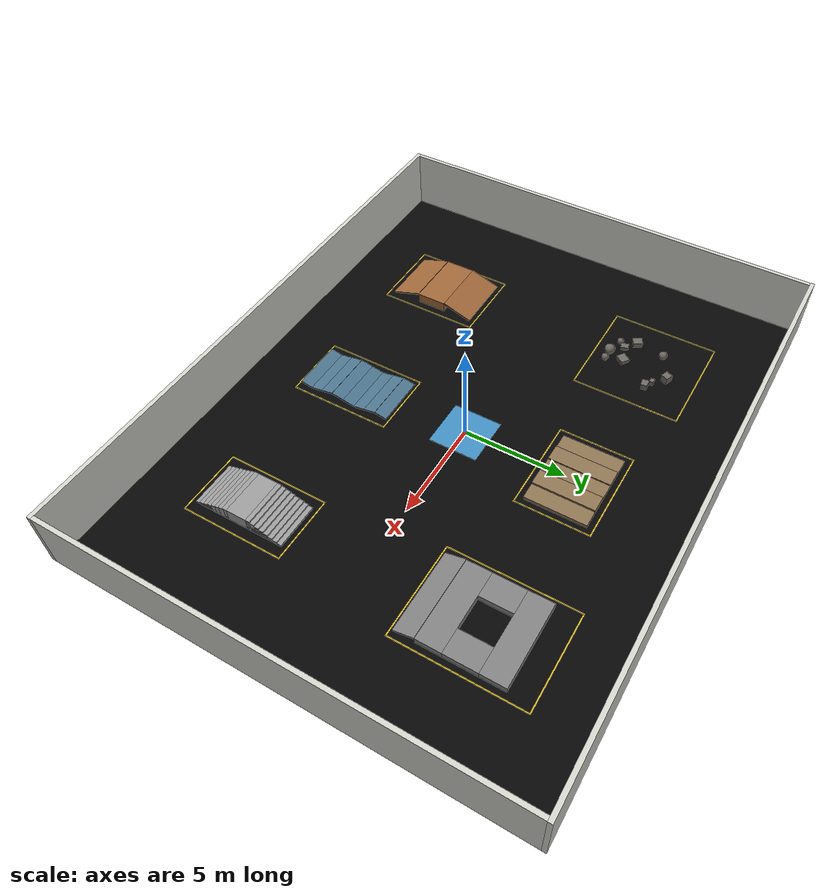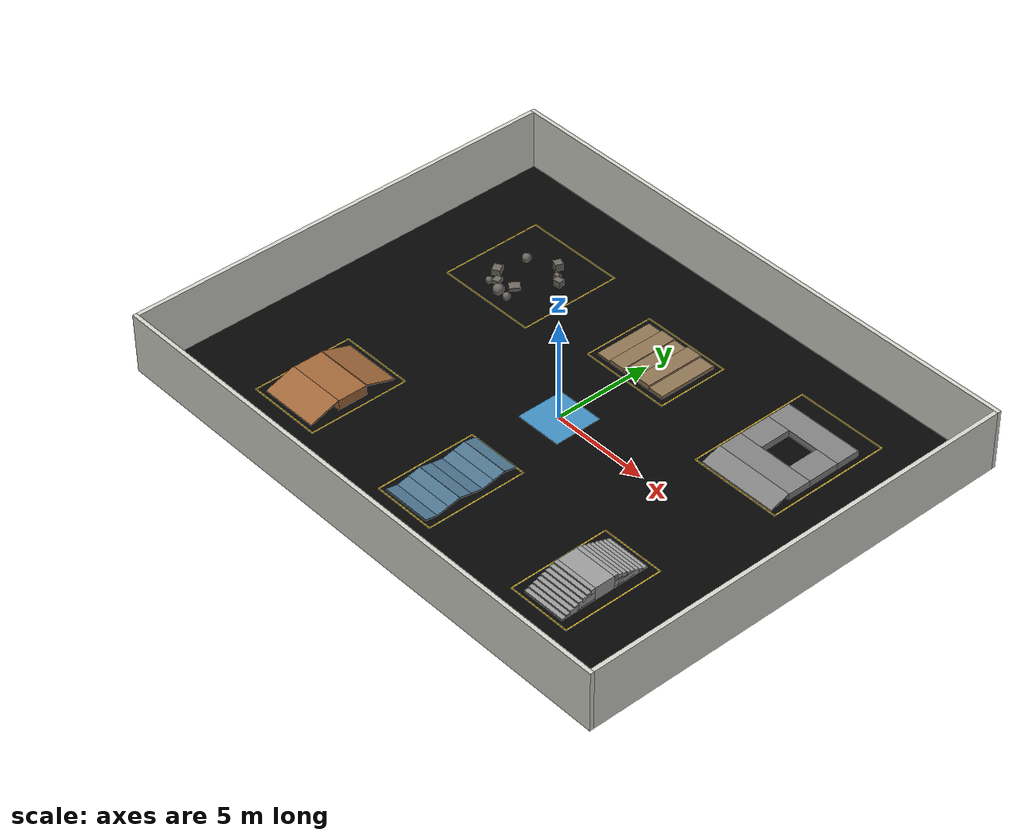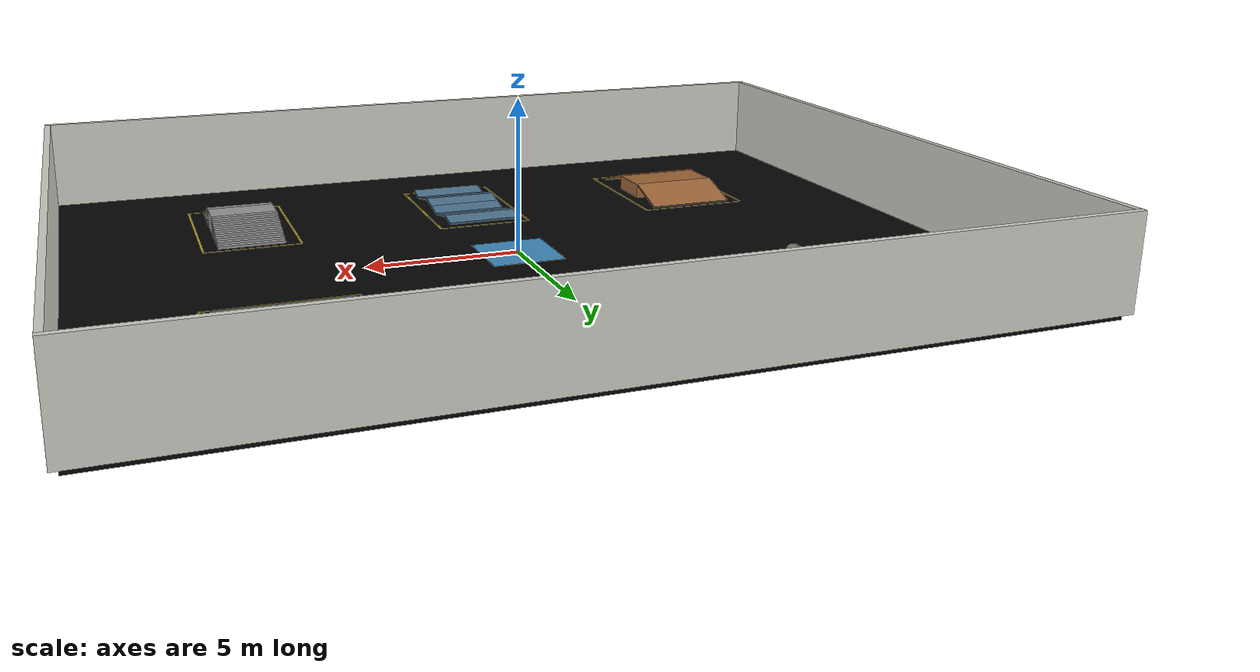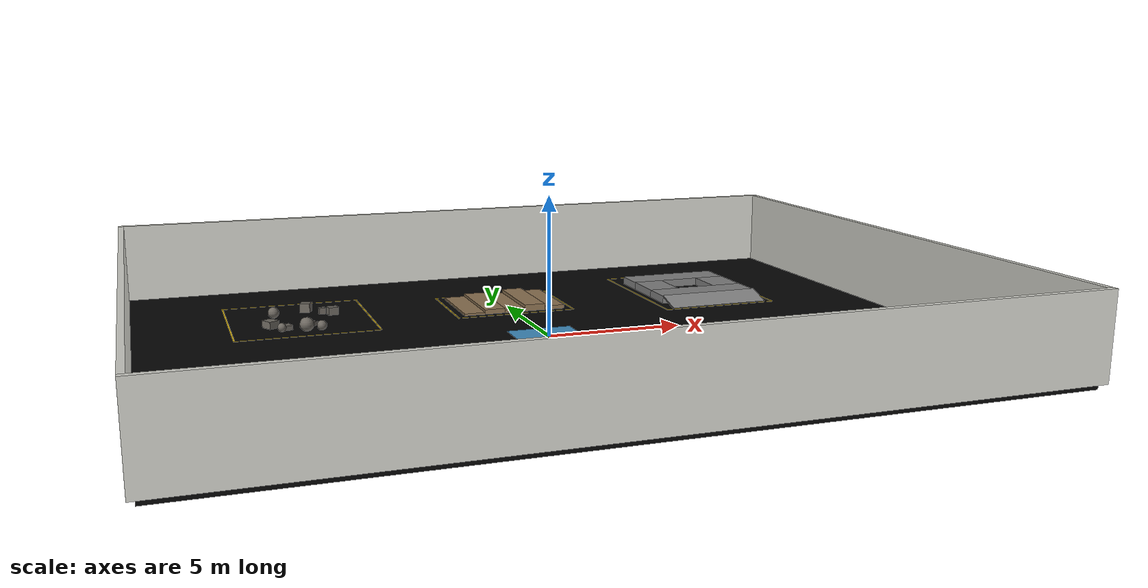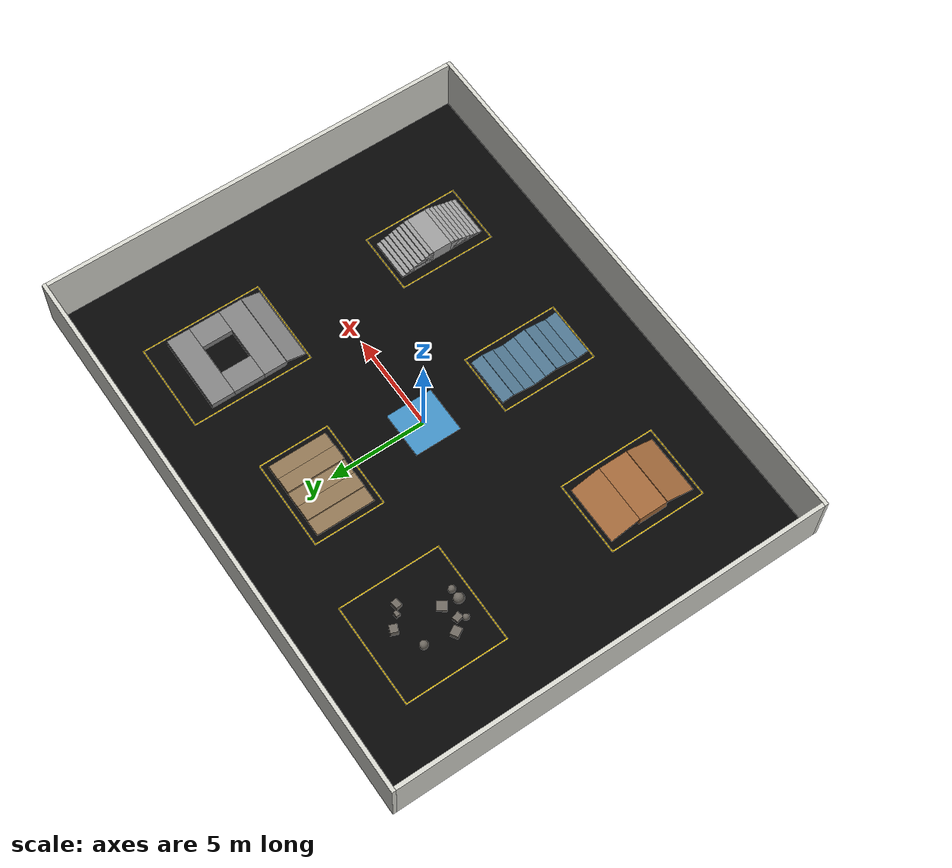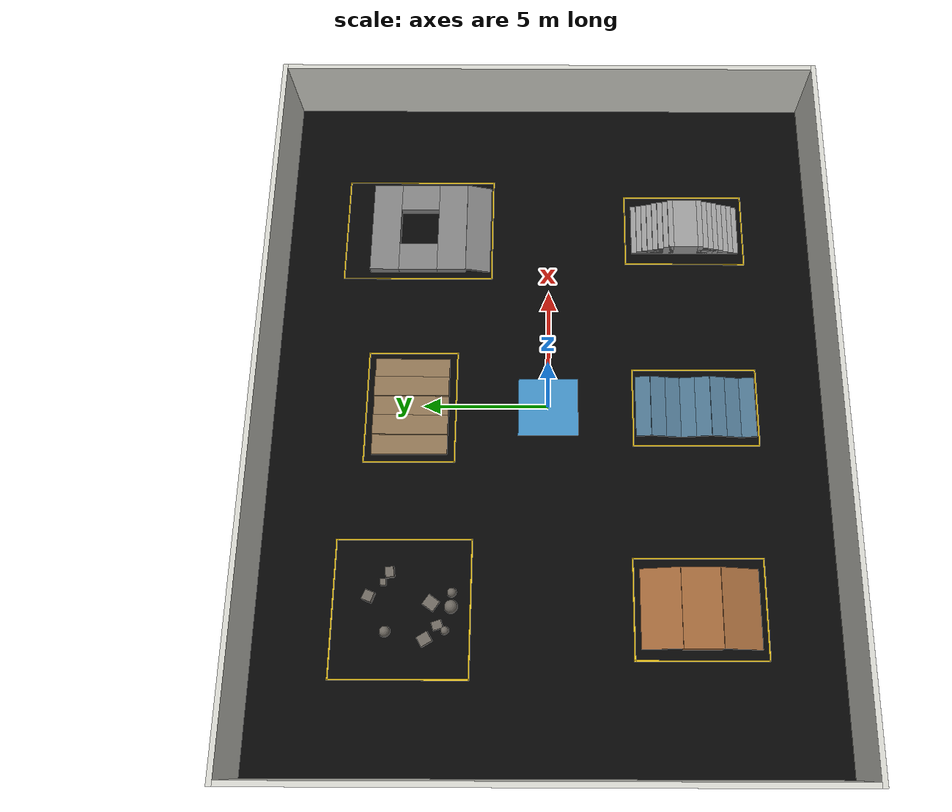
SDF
<?xml version="1.0" ?>
<sdf version="1.6">
  <world name="quadruped_test_lab">
    <physics name="1ms" type="ignored">
      <max_step_size>0.001</max_step_size>
      <real_time_factor>1.0</real_time_factor>
    </physics>
    <plugin filename="gz-sim-physics-system" name="gz::sim::systems::Physics"></plugin>
    <plugin filename="gz-sim-user-commands-system" name="gz::sim::systems::UserCommands"></plugin>
    <plugin filename="gz-sim-scene-broadcaster-system" name="gz::sim::systems::SceneBroadcaster"></plugin>
    <plugin filename="gz-sim-contact-system" name="gz::sim::systems::Contact"></plugin>
    <plugin filename="gz-sim-sensors-system" name="gz::sim::systems::Sensors">
      <render_engine>ogre2</render_engine>
    </plugin>
    <plugin filename="gz-sim-imu-system" name="gz::sim::systems::Imu"></plugin>
    <plugin filename="gz-sim-apply-link-wrench-system" name="gz::sim::systems::ApplyLinkWrench"></plugin>

    <!-- Soft fill light (stands in for skylights) - the point lights below do
         the actual work of lighting an enclosed room. -->
    <light type="directional" name="sun">
      <cast_shadows>false</cast_shadows>
      <pose>0 0 10 0 0 0</pose>
      <diffuse>0.35 0.35 0.35 1</diffuse>
      <specular>0.1 0.1 0.1 1</specular>
      <attenuation>
        <range>1000</range>
        <constant>0.9</constant>
        <linear>0.01</linear>
        <quadratic>0.001</quadratic>
      </attenuation>
      <direction>-0.5 0.1 -0.9</direction>
    </light>

    <light type="point" name="ceiling_light_0">
      <pose>0 0 2.80 0 0 0</pose>
      <diffuse>0.9 0.9 0.85 1</diffuse>
      <specular>0.2 0.2 0.2 1</specular>
      <attenuation>
        <range>18</range>
        <constant>0.4</constant>
        <linear>0.05</linear>
        <quadratic>0.006</quadratic>
      </attenuation>
      <cast_shadows>false</cast_shadows>
    </light>
    <light type="point" name="ceiling_light_1">
      <pose>-8 5.5 2.80 0 0 0</pose>
      <diffuse>0.9 0.9 0.85 1</diffuse>
      <specular>0.2 0.2 0.2 1</specular>
      <attenuation>
        <range>18</range>
        <constant>0.4</constant>
        <linear>0.05</linear>
        <quadratic>0.006</quadratic>
      </attenuation>
      <cast_shadows>false</cast_shadows>
    </light>
    <light type="point" name="ceiling_light_2">
      <pose>0 5.5 2.80 0 0 0</pose>
      <diffuse>0.9 0.9 0.85 1</diffuse>
      <specular>0.2 0.2 0.2 1</specular>
      <attenuation>
        <range>18</range>
        <constant>0.4</constant>
        <linear>0.05</linear>
        <quadratic>0.006</quadratic>
      </attenuation>
      <cast_shadows>false</cast_shadows>
    </light>
    <light type="point" name="ceiling_light_3">
      <pose>8 5.5 2.80 0 0 0</pose>
      <diffuse>0.9 0.9 0.85 1</diffuse>
      <specular>0.2 0.2 0.2 1</specular>
      <attenuation>
        <range>18</range>
        <constant>0.4</constant>
        <linear>0.05</linear>
        <quadratic>0.006</quadratic>
      </attenuation>
      <cast_shadows>false</cast_shadows>
    </light>
    <light type="point" name="ceiling_light_4">
      <pose>-8 -5.5 2.80 0 0 0</pose>
      <diffuse>0.9 0.9 0.85 1</diffuse>
      <specular>0.2 0.2 0.2 1</specular>
      <attenuation>
        <range>18</range>
        <constant>0.4</constant>
        <linear>0.05</linear>
        <quadratic>0.006</quadratic>
      </attenuation>
      <cast_shadows>false</cast_shadows>
    </light>
    <light type="point" name="ceiling_light_5">
      <pose>0 -5.5 2.80 0 0 0</pose>
      <diffuse>0.9 0.9 0.85 1</diffuse>
      <specular>0.2 0.2 0.2 1</specular>
      <attenuation>
        <range>18</range>
        <constant>0.4</constant>
        <linear>0.05</linear>
        <quadratic>0.006</quadratic>
      </attenuation>
      <cast_shadows>false</cast_shadows>
    </light>
    <light type="point" name="ceiling_light_6">
      <pose>8 -5.5 2.80 0 0 0</pose>
      <diffuse>0.9 0.9 0.85 1</diffuse>
      <specular>0.2 0.2 0.2 1</specular>
      <attenuation>
        <range>18</range>
        <constant>0.4</constant>
        <linear>0.05</linear>
        <quadratic>0.006</quadratic>
      </attenuation>
      <cast_shadows>false</cast_shadows>
    </light>

    <model name="rock_sphere_0">
      <static>true</static>
      <pose>-7.442 3.600 0.180 0 0 0</pose>
      <link name="link">
        <collision name="collision">
          <geometry><sphere><radius>0.180</radius></sphere></geometry>
          <surface><friction><ode><mu>0.9</mu><mu2>0.9</mu2></ode></friction></surface>
        </collision>
        <visual name="visual">
          <geometry><sphere><radius>0.180</radius></sphere></geometry>
          <material>
            <ambient>0.42 0.4 0.37 1.0</ambient>
            <diffuse>0.42 0.4 0.37 1.0</diffuse>
          </material>
        </visual>
      </link>
    </model>
    <model name="rock_box_0">
      <static>true</static>
      <pose>-7.054 6.207 0.117 0.0000 0.0000 0.0936</pose>
      <link name="link">
        <collision name="collision">
          <geometry><box><size>0.244 0.203 0.234</size></box></geometry>
          <surface><friction><ode><mu>0.9</mu><mu2>0.9</mu2></ode></friction></surface>
        </collision>
        <visual name="visual">
          <geometry><box><size>0.244 0.203 0.234</size></box></geometry>
          <material>
            <ambient>0.42 0.4 0.37 1.0</ambient>
            <diffuse>0.42 0.4 0.37 1.0</diffuse>
          </material>
        </visual>
      </link>
    </model>
    <model name="rock_sphere_1">
      <static>true</static>
      <pose>-7.979 3.606 0.257 0 0 0</pose>
      <link name="link">
        <collision name="collision">
          <geometry><sphere><radius>0.257</radius></sphere></geometry>
          <surface><friction><ode><mu>0.9</mu><mu2>0.9</mu2></ode></friction></surface>
        </collision>
        <visual name="visual">
          <geometry><sphere><radius>0.257</radius></sphere></geometry>
          <material>
            <ambient>0.42 0.4 0.37 1.0</ambient>
            <diffuse>0.42 0.4 0.37 1.0</diffuse>
          </material>
        </visual>
      </link>
    </model>
    <model name="rock_box_1">
      <static>true</static>
      <pose>-7.820 4.382 0.076 0.0000 0.0000 2.5316</pose>
      <link name="link">
        <collision name="collision">
          <geometry><box><size>0.447 0.500 0.151</size></box></geometry>
          <surface><friction><ode><mu>0.9</mu><mu2>0.9</mu2></ode></friction></surface>
        </collision>
        <visual name="visual">
          <geometry><box><size>0.447 0.500 0.151</size></box></geometry>
          <material>
            <ambient>0.42 0.4 0.37 1.0</ambient>
            <diffuse>0.42 0.4 0.37 1.0</diffuse>
          </material>
        </visual>
      </link>
    </model>
    <model name="rock_box_2">
      <static>true</static>
      <pose>-8.639 4.122 0.084 0.0000 0.0000 0.3038</pose>
      <link name="link">
        <collision name="collision">
          <geometry><box><size>0.314 0.380 0.169</size></box></geometry>
          <surface><friction><ode><mu>0.9</mu><mu2>0.9</mu2></ode></friction></surface>
        </collision>
        <visual name="visual">
          <geometry><box><size>0.314 0.380 0.169</size></box></geometry>
          <material>
            <ambient>0.42 0.4 0.37 1.0</ambient>
            <diffuse>0.42 0.4 0.37 1.0</diffuse>
          </material>
        </visual>
      </link>
    </model>
    <model name="rock_box_3">
      <static>true</static>
      <pose>-7.585 6.729 0.172 0.0000 0.0000 1.1892</pose>
      <link name="link">
        <collision name="collision">
          <geometry><box><size>0.370 0.382 0.345</size></box></geometry>
          <surface><friction><ode><mu>0.9</mu><mu2>0.9</mu2></ode></friction></surface>
        </collision>
        <visual name="visual">
          <geometry><box><size>0.370 0.382 0.345</size></box></geometry>
          <material>
            <ambient>0.42 0.4 0.37 1.0</ambient>
            <diffuse>0.42 0.4 0.37 1.0</diffuse>
          </material>
        </visual>
      </link>
    </model>
    <model name="rock_box_4">
      <static>true</static>
      <pose>-6.682 5.974 0.145 0.0000 0.0000 0.1440</pose>
      <link name="link">
        <collision name="collision">
          <geometry><box><size>0.382 0.319 0.291</size></box></geometry>
          <surface><friction><ode><mu>0.9</mu><mu2>0.9</mu2></ode></friction></surface>
        </collision>
        <visual name="visual">
          <geometry><box><size>0.382 0.319 0.291</size></box></geometry>
          <material>
            <ambient>0.42 0.4 0.37 1.0</ambient>
            <diffuse>0.42 0.4 0.37 1.0</diffuse>
          </material>
        </visual>
      </link>
    </model>
    <model name="rock_sphere_2">
      <static>true</static>
      <pose>-8.842 3.819 0.158 0 0 0</pose>
      <link name="link">
        <collision name="collision">
          <geometry><sphere><radius>0.158</radius></sphere></geometry>
          <surface><friction><ode><mu>0.9</mu><mu2>0.9</mu2></ode></friction></surface>
        </collision>
        <visual name="visual">
          <geometry><sphere><radius>0.158</radius></sphere></geometry>
          <material>
            <ambient>0.42 0.4 0.37 1.0</ambient>
            <diffuse>0.42 0.4 0.37 1.0</diffuse>
          </material>
        </visual>
      </link>
    </model>
    <model name="rock_sphere_3">
      <static>true</static>
      <pose>-8.888 6.043 0.207 0 0 0</pose>
      <link name="link">
        <collision name="collision">
          <geometry><sphere><radius>0.207</radius></sphere></geometry>
          <surface><friction><ode><mu>0.9</mu><mu2>0.9</mu2></ode></friction></surface>
        </collision>
        <visual name="visual">
          <geometry><sphere><radius>0.207</radius></sphere></geometry>
          <material>
            <ambient>0.42 0.4 0.37 1.0</ambient>
            <diffuse>0.42 0.4 0.37 1.0</diffuse>
          </material>
        </visual>
      </link>
    </model>
    <model name="rock_box_5">
      <static>true</static>
      <pose>-9.162 4.568 0.136 0.0000 0.0000 0.5376</pose>
      <link name="link">
        <collision name="collision">
          <geometry><box><size>0.401 0.457 0.272</size></box></geometry>
          <surface><friction><ode><mu>0.9</mu><mu2>0.9</mu2></ode></friction></surface>
        </collision>
        <visual name="visual">
          <geometry><box><size>0.401 0.457 0.272</size></box></geometry>
          <material>
            <ambient>0.42 0.4 0.37 1.0</ambient>
            <diffuse>0.42 0.4 0.37 1.0</diffuse>
          </material>
        </visual>
      </link>
    </model>
    <model name="step_field_0">
      <static>true</static>
      <pose>-1.600 5.500 0.040 0.0000 0.0000 0.0000</pose>
      <link name="link">
        <collision name="collision">
          <geometry><box><size>0.800 3.000 0.080</size></box></geometry>
          <surface><friction><ode><mu>0.9</mu><mu2>0.9</mu2></ode></friction></surface>
        </collision>
        <visual name="visual">
          <geometry><box><size>0.800 3.000 0.080</size></box></geometry>
          <material>
            <ambient>0.55 0.45 0.32 1.0</ambient>
            <diffuse>0.55 0.45 0.32 1.0</diffuse>
          </material>
        </visual>
      </link>
    </model>
    <model name="step_field_1">
      <static>true</static>
      <pose>-0.800 5.500 0.090 0.0000 0.0000 0.0000</pose>
      <link name="link">
        <collision name="collision">
          <geometry><box><size>0.800 3.000 0.180</size></box></geometry>
          <surface><friction><ode><mu>0.9</mu><mu2>0.9</mu2></ode></friction></surface>
        </collision>
        <visual name="visual">
          <geometry><box><size>0.800 3.000 0.180</size></box></geometry>
          <material>
            <ambient>0.55 0.45 0.32 1.0</ambient>
            <diffuse>0.55 0.45 0.32 1.0</diffuse>
          </material>
        </visual>
      </link>
    </model>
    <model name="step_field_2">
      <static>true</static>
      <pose>0.000 5.500 0.060 0.0000 0.0000 0.0000</pose>
      <link name="link">
        <collision name="collision">
          <geometry><box><size>0.800 3.000 0.120</size></box></geometry>
          <surface><friction><ode><mu>0.9</mu><mu2>0.9</mu2></ode></friction></surface>
        </collision>
        <visual name="visual">
          <geometry><box><size>0.800 3.000 0.120</size></box></geometry>
          <material>
            <ambient>0.55 0.45 0.32 1.0</ambient>
            <diffuse>0.55 0.45 0.32 1.0</diffuse>
          </material>
        </visual>
      </link>
    </model>
    <model name="step_field_3">
      <static>true</static>
      <pose>0.800 5.500 0.125 0.0000 0.0000 0.0000</pose>
      <link name="link">
        <collision name="collision">
          <geometry><box><size>0.800 3.000 0.250</size></box></geometry>
          <surface><friction><ode><mu>0.9</mu><mu2>0.9</mu2></ode></friction></surface>
        </collision>
        <visual name="visual">
          <geometry><box><size>0.800 3.000 0.250</size></box></geometry>
          <material>
            <ambient>0.55 0.45 0.32 1.0</ambient>
            <diffuse>0.55 0.45 0.32 1.0</diffuse>
          </material>
        </visual>
      </link>
    </model>
    <model name="step_field_4">
      <static>true</static>
      <pose>1.600 5.500 0.075 0.0000 0.0000 0.0000</pose>
      <link name="link">
        <collision name="collision">
          <geometry><box><size>0.800 3.000 0.150</size></box></geometry>
          <surface><friction><ode><mu>0.9</mu><mu2>0.9</mu2></ode></friction></surface>
        </collision>
        <visual name="visual">
          <geometry><box><size>0.800 3.000 0.150</size></box></geometry>
          <material>
            <ambient>0.55 0.45 0.32 1.0</ambient>
            <diffuse>0.55 0.45 0.32 1.0</diffuse>
          </material>
        </visual>
      </link>
    </model>
    <model name="pit_frame_north_0">
      <static>true</static>
      <pose>8.000 6.900 0.150 0.0000 0.0000 0.0000</pose>
      <link name="link">
        <collision name="collision">
          <geometry><box><size>4.000 1.200 0.300</size></box></geometry>
          <surface><friction><ode><mu>0.9</mu><mu2>0.9</mu2></ode></friction></surface>
        </collision>
        <visual name="visual">
          <geometry><box><size>4.000 1.200 0.300</size></box></geometry>
          <material>
            <ambient>0.5 0.5 0.5 1.0</ambient>
            <diffuse>0.5 0.5 0.5 1.0</diffuse>
          </material>
        </visual>
      </link>
    </model>
    <model name="pit_frame_south_0">
      <static>true</static>
      <pose>8.000 4.100 0.150 0.0000 0.0000 0.0000</pose>
      <link name="link">
        <collision name="collision">
          <geometry><box><size>4.000 1.200 0.300</size></box></geometry>
          <surface><friction><ode><mu>0.9</mu><mu2>0.9</mu2></ode></friction></surface>
        </collision>
        <visual name="visual">
          <geometry><box><size>4.000 1.200 0.300</size></box></geometry>
          <material>
            <ambient>0.5 0.5 0.5 1.0</ambient>
            <diffuse>0.5 0.5 0.5 1.0</diffuse>
          </material>
        </visual>
      </link>
    </model>
    <model name="pit_frame_east_0">
      <static>true</static>
      <pose>9.400 5.500 0.150 0.0000 0.0000 0.0000</pose>
      <link name="link">
        <collision name="collision">
          <geometry><box><size>1.200 1.600 0.300</size></box></geometry>
          <surface><friction><ode><mu>0.9</mu><mu2>0.9</mu2></ode></friction></surface>
        </collision>
        <visual name="visual">
          <geometry><box><size>1.200 1.600 0.300</size></box></geometry>
          <material>
            <ambient>0.5 0.5 0.5 1.0</ambient>
            <diffuse>0.5 0.5 0.5 1.0</diffuse>
          </material>
        </visual>
      </link>
    </model>
    <model name="pit_frame_west_0">
      <static>true</static>
      <pose>6.600 5.500 0.150 0.0000 0.0000 0.0000</pose>
      <link name="link">
        <collision name="collision">
          <geometry><box><size>1.200 1.600 0.300</size></box></geometry>
          <surface><friction><ode><mu>0.9</mu><mu2>0.9</mu2></ode></friction></surface>
        </collision>
        <visual name="visual">
          <geometry><box><size>1.200 1.600 0.300</size></box></geometry>
          <material>
            <ambient>0.5 0.5 0.5 1.0</ambient>
            <diffuse>0.5 0.5 0.5 1.0</diffuse>
          </material>
        </visual>
      </link>
    </model>
    <model name="pit_ramp">
      <static>true</static>
      <pose>8.000 3.000 0.150 0.2915 0.0000 0.0000</pose>
      <link name="link">
        <collision name="collision">
          <geometry><box><size>4.000 1.044 0.060</size></box></geometry>
          <surface><friction><ode><mu>0.9</mu><mu2>0.9</mu2></ode></friction></surface>
        </collision>
        <visual name="visual">
          <geometry><box><size>4.000 1.044 0.060</size></box></geometry>
          <material>
            <ambient>0.5 0.5 0.5 1.0</ambient>
            <diffuse>0.5 0.5 0.5 1.0</diffuse>
          </material>
        </visual>
      </link>
    </model>
    <model name="slope_up_ramp">
      <static>true</static>
      <pose>-8.000 -4.250 0.250 -0.3218 0.0000 0.0000</pose>
      <link name="link">
        <collision name="collision">
          <geometry><box><size>3.000 1.581 0.060</size></box></geometry>
          <surface><friction><ode><mu>0.9</mu><mu2>0.9</mu2></ode></friction></surface>
        </collision>
        <visual name="visual">
          <geometry><box><size>3.000 1.581 0.060</size></box></geometry>
          <material>
            <ambient>0.62 0.4 0.22 1.0</ambient>
            <diffuse>0.62 0.4 0.22 1.0</diffuse>
          </material>
        </visual>
      </link>
    </model>
    <model name="slope_plateau">
      <static>true</static>
      <pose>-8.000 -5.750 0.250 0.0000 0.0000 0.0000</pose>
      <link name="link">
        <collision name="collision">
          <geometry><box><size>3.000 1.500 0.500</size></box></geometry>
          <surface><friction><ode><mu>0.9</mu><mu2>0.9</mu2></ode></friction></surface>
        </collision>
        <visual name="visual">
          <geometry><box><size>3.000 1.500 0.500</size></box></geometry>
          <material>
            <ambient>0.62 0.4 0.22 1.0</ambient>
            <diffuse>0.62 0.4 0.22 1.0</diffuse>
          </material>
        </visual>
      </link>
    </model>
    <model name="slope_down_ramp">
      <static>true</static>
      <pose>-8.000 -7.250 0.250 0.3218 0.0000 0.0000</pose>
      <link name="link">
        <collision name="collision">
          <geometry><box><size>3.000 1.581 0.060</size></box></geometry>
          <surface><friction><ode><mu>0.9</mu><mu2>0.9</mu2></ode></friction></surface>
        </collision>
        <visual name="visual">
          <geometry><box><size>3.000 1.581 0.060</size></box></geometry>
          <material>
            <ambient>0.62 0.4 0.22 1.0</ambient>
            <diffuse>0.62 0.4 0.22 1.0</diffuse>
          </material>
        </visual>
      </link>
    </model>
    <model name="wave_seg_0">
      <static>true</static>
      <pose>0.000 -3.800 0.180 -0.1974 0.0000 0.0000</pose>
      <link name="link">
        <collision name="collision">
          <geometry><box><size>2.500 0.612 0.060</size></box></geometry>
          <surface><friction><ode><mu>0.9</mu><mu2>0.9</mu2></ode></friction></surface>
        </collision>
        <visual name="visual">
          <geometry><box><size>2.500 0.612 0.060</size></box></geometry>
          <material>
            <ambient>0.3 0.45 0.55 1.0</ambient>
            <diffuse>0.3 0.45 0.55 1.0</diffuse>
          </material>
        </visual>
      </link>
    </model>
    <model name="wave_seg_1">
      <static>true</static>
      <pose>0.000 -4.400 0.180 0.1974 0.0000 0.0000</pose>
      <link name="link">
        <collision name="collision">
          <geometry><box><size>2.500 0.612 0.060</size></box></geometry>
          <surface><friction><ode><mu>0.9</mu><mu2>0.9</mu2></ode></friction></surface>
        </collision>
        <visual name="visual">
          <geometry><box><size>2.500 0.612 0.060</size></box></geometry>
          <material>
            <ambient>0.3 0.45 0.55 1.0</ambient>
            <diffuse>0.3 0.45 0.55 1.0</diffuse>
          </material>
        </visual>
      </link>
    </model>
    <model name="wave_seg_2">
      <static>true</static>
      <pose>0.000 -5.000 0.060 0.1974 0.0000 0.0000</pose>
      <link name="link">
        <collision name="collision">
          <geometry><box><size>2.500 0.612 0.060</size></box></geometry>
          <surface><friction><ode><mu>0.9</mu><mu2>0.9</mu2></ode></friction></surface>
        </collision>
        <visual name="visual">
          <geometry><box><size>2.500 0.612 0.060</size></box></geometry>
          <material>
            <ambient>0.3 0.45 0.55 1.0</ambient>
            <diffuse>0.3 0.45 0.55 1.0</diffuse>
          </material>
        </visual>
      </link>
    </model>
    <model name="wave_seg_3">
      <static>true</static>
      <pose>0.000 -5.600 0.060 -0.1974 0.0000 0.0000</pose>
      <link name="link">
        <collision name="collision">
          <geometry><box><size>2.500 0.612 0.060</size></box></geometry>
          <surface><friction><ode><mu>0.9</mu><mu2>0.9</mu2></ode></friction></surface>
        </collision>
        <visual name="visual">
          <geometry><box><size>2.500 0.612 0.060</size></box></geometry>
          <material>
            <ambient>0.3 0.45 0.55 1.0</ambient>
            <diffuse>0.3 0.45 0.55 1.0</diffuse>
          </material>
        </visual>
      </link>
    </model>
    <model name="wave_seg_4">
      <static>true</static>
      <pose>0.000 -6.200 0.180 -0.1974 0.0000 0.0000</pose>
      <link name="link">
        <collision name="collision">
          <geometry><box><size>2.500 0.612 0.060</size></box></geometry>
          <surface><friction><ode><mu>0.9</mu><mu2>0.9</mu2></ode></friction></surface>
        </collision>
        <visual name="visual">
          <geometry><box><size>2.500 0.612 0.060</size></box></geometry>
          <material>
            <ambient>0.3 0.45 0.55 1.0</ambient>
            <diffuse>0.3 0.45 0.55 1.0</diffuse>
          </material>
        </visual>
      </link>
    </model>
    <model name="wave_seg_5">
      <static>true</static>
      <pose>0.000 -6.800 0.180 0.1974 0.0000 0.0000</pose>
      <link name="link">
        <collision name="collision">
          <geometry><box><size>2.500 0.612 0.060</size></box></geometry>
          <surface><friction><ode><mu>0.9</mu><mu2>0.9</mu2></ode></friction></surface>
        </collision>
        <visual name="visual">
          <geometry><box><size>2.500 0.612 0.060</size></box></geometry>
          <material>
            <ambient>0.3 0.45 0.55 1.0</ambient>
            <diffuse>0.3 0.45 0.55 1.0</diffuse>
          </material>
        </visual>
      </link>
    </model>
    <model name="wave_seg_6">
      <static>true</static>
      <pose>0.000 -7.400 0.060 0.1974 0.0000 0.0000</pose>
      <link name="link">
        <collision name="collision">
          <geometry><box><size>2.500 0.612 0.060</size></box></geometry>
          <surface><friction><ode><mu>0.9</mu><mu2>0.9</mu2></ode></friction></surface>
        </collision>
        <visual name="visual">
          <geometry><box><size>2.500 0.612 0.060</size></box></geometry>
          <material>
            <ambient>0.3 0.45 0.55 1.0</ambient>
            <diffuse>0.3 0.45 0.55 1.0</diffuse>
          </material>
        </visual>
      </link>
    </model>
    <model name="wave_seg_7">
      <static>true</static>
      <pose>0.000 -8.000 0.060 -0.1974 0.0000 0.0000</pose>
      <link name="link">
        <collision name="collision">
          <geometry><box><size>2.500 0.612 0.060</size></box></geometry>
          <surface><friction><ode><mu>0.9</mu><mu2>0.9</mu2></ode></friction></surface>
        </collision>
        <visual name="visual">
          <geometry><box><size>2.500 0.612 0.060</size></box></geometry>
          <material>
            <ambient>0.3 0.45 0.55 1.0</ambient>
            <diffuse>0.3 0.45 0.55 1.0</diffuse>
          </material>
        </visual>
      </link>
    </model>
    <model name="stair_up_step1_0">
      <static>true</static>
      <pose>8.000 -4.380 0.040 0.0000 0.0000 0.0000</pose>
      <link name="link">
        <collision name="collision">
          <geometry><box><size>2.200 1.760 0.080</size></box></geometry>
          <surface><friction><ode><mu>0.9</mu><mu2>0.9</mu2></ode></friction></surface>
        </collision>
        <visual name="visual">
          <geometry><box><size>2.200 1.760 0.080</size></box></geometry>
          <material>
            <ambient>0.6 0.6 0.6 1.0</ambient>
            <diffuse>0.6 0.6 0.6 1.0</diffuse>
          </material>
        </visual>
      </link>
    </model>
    <model name="stair_up_step2_0">
      <static>true</static>
      <pose>8.000 -4.490 0.080 0.0000 0.0000 0.0000</pose>
      <link name="link">
        <collision name="collision">
          <geometry><box><size>2.200 1.540 0.160</size></box></geometry>
          <surface><friction><ode><mu>0.9</mu><mu2>0.9</mu2></ode></friction></surface>
        </collision>
        <visual name="visual">
          <geometry><box><size>2.200 1.540 0.160</size></box></geometry>
          <material>
            <ambient>0.6 0.6 0.6 1.0</ambient>
            <diffuse>0.6 0.6 0.6 1.0</diffuse>
          </material>
        </visual>
      </link>
    </model>
    <model name="stair_up_step3_0">
      <static>true</static>
      <pose>8.000 -4.600 0.120 0.0000 0.0000 0.0000</pose>
      <link name="link">
        <collision name="collision">
          <geometry><box><size>2.200 1.320 0.240</size></box></geometry>
          <surface><friction><ode><mu>0.9</mu><mu2>0.9</mu2></ode></friction></surface>
        </collision>
        <visual name="visual">
          <geometry><box><size>2.200 1.320 0.240</size></box></geometry>
          <material>
            <ambient>0.6 0.6 0.6 1.0</ambient>
            <diffuse>0.6 0.6 0.6 1.0</diffuse>
          </material>
        </visual>
      </link>
    </model>
    <model name="stair_up_step4_0">
      <static>true</static>
      <pose>8.000 -4.710 0.160 0.0000 0.0000 0.0000</pose>
      <link name="link">
        <collision name="collision">
          <geometry><box><size>2.200 1.100 0.320</size></box></geometry>
          <surface><friction><ode><mu>0.9</mu><mu2>0.9</mu2></ode></friction></surface>
        </collision>
        <visual name="visual">
          <geometry><box><size>2.200 1.100 0.320</size></box></geometry>
          <material>
            <ambient>0.6 0.6 0.6 1.0</ambient>
            <diffuse>0.6 0.6 0.6 1.0</diffuse>
          </material>
        </visual>
      </link>
    </model>
    <model name="stair_up_step5_0">
      <static>true</static>
      <pose>8.000 -4.820 0.200 0.0000 0.0000 0.0000</pose>
      <link name="link">
        <collision name="collision">
          <geometry><box><size>2.200 0.880 0.400</size></box></geometry>
          <surface><friction><ode><mu>0.9</mu><mu2>0.9</mu2></ode></friction></surface>
        </collision>
        <visual name="visual">
          <geometry><box><size>2.200 0.880 0.400</size></box></geometry>
          <material>
            <ambient>0.6 0.6 0.6 1.0</ambient>
            <diffuse>0.6 0.6 0.6 1.0</diffuse>
          </material>
        </visual>
      </link>
    </model>
    <model name="stair_up_step6_0">
      <static>true</static>
      <pose>8.000 -4.930 0.240 0.0000 0.0000 0.0000</pose>
      <link name="link">
        <collision name="collision">
          <geometry><box><size>2.200 0.660 0.480</size></box></geometry>
          <surface><friction><ode><mu>0.9</mu><mu2>0.9</mu2></ode></friction></surface>
        </collision>
        <visual name="visual">
          <geometry><box><size>2.200 0.660 0.480</size></box></geometry>
          <material>
            <ambient>0.6 0.6 0.6 1.0</ambient>
            <diffuse>0.6 0.6 0.6 1.0</diffuse>
          </material>
        </visual>
      </link>
    </model>
    <model name="stair_up_step7_0">
      <static>true</static>
      <pose>8.000 -5.040 0.280 0.0000 0.0000 0.0000</pose>
      <link name="link">
        <collision name="collision">
          <geometry><box><size>2.200 0.440 0.560</size></box></geometry>
          <surface><friction><ode><mu>0.9</mu><mu2>0.9</mu2></ode></friction></surface>
        </collision>
        <visual name="visual">
          <geometry><box><size>2.200 0.440 0.560</size></box></geometry>
          <material>
            <ambient>0.6 0.6 0.6 1.0</ambient>
            <diffuse>0.6 0.6 0.6 1.0</diffuse>
          </material>
        </visual>
      </link>
    </model>
    <model name="stair_up_step8_0">
      <static>true</static>
      <pose>8.000 -5.150 0.320 0.0000 0.0000 0.0000</pose>
      <link name="link">
        <collision name="collision">
          <geometry><box><size>2.200 0.220 0.640</size></box></geometry>
          <surface><friction><ode><mu>0.9</mu><mu2>0.9</mu2></ode></friction></surface>
        </collision>
        <visual name="visual">
          <geometry><box><size>2.200 0.220 0.640</size></box></geometry>
          <material>
            <ambient>0.6 0.6 0.6 1.0</ambient>
            <diffuse>0.6 0.6 0.6 1.0</diffuse>
          </material>
        </visual>
      </link>
    </model>
    <model name="stair_landing">
      <static>true</static>
      <pose>8.000 -5.760 0.320 0.0000 0.0000 0.0000</pose>
      <link name="link">
        <collision name="collision">
          <geometry><box><size>2.200 1.000 0.640</size></box></geometry>
          <surface><friction><ode><mu>0.9</mu><mu2>0.9</mu2></ode></friction></surface>
        </collision>
        <visual name="visual">
          <geometry><box><size>2.200 1.000 0.640</size></box></geometry>
          <material>
            <ambient>0.6 0.6 0.6 1.0</ambient>
            <diffuse>0.6 0.6 0.6 1.0</diffuse>
          </material>
        </visual>
      </link>
    </model>
    <model name="stair_down_step1_0">
      <static>true</static>
      <pose>8.000 -7.140 0.040 0.0000 0.0000 0.0000</pose>
      <link name="link">
        <collision name="collision">
          <geometry><box><size>2.200 1.760 0.080</size></box></geometry>
          <surface><friction><ode><mu>0.9</mu><mu2>0.9</mu2></ode></friction></surface>
        </collision>
        <visual name="visual">
          <geometry><box><size>2.200 1.760 0.080</size></box></geometry>
          <material>
            <ambient>0.6 0.6 0.6 1.0</ambient>
            <diffuse>0.6 0.6 0.6 1.0</diffuse>
          </material>
        </visual>
      </link>
    </model>
    <model name="stair_down_step2_0">
      <static>true</static>
      <pose>8.000 -7.030 0.080 0.0000 0.0000 0.0000</pose>
      <link name="link">
        <collision name="collision">
          <geometry><box><size>2.200 1.540 0.160</size></box></geometry>
          <surface><friction><ode><mu>0.9</mu><mu2>0.9</mu2></ode></friction></surface>
        </collision>
        <visual name="visual">
          <geometry><box><size>2.200 1.540 0.160</size></box></geometry>
          <material>
            <ambient>0.6 0.6 0.6 1.0</ambient>
            <diffuse>0.6 0.6 0.6 1.0</diffuse>
          </material>
        </visual>
      </link>
    </model>
    <model name="stair_down_step3_0">
      <static>true</static>
      <pose>8.000 -6.920 0.120 0.0000 0.0000 0.0000</pose>
      <link name="link">
        <collision name="collision">
          <geometry><box><size>2.200 1.320 0.240</size></box></geometry>
          <surface><friction><ode><mu>0.9</mu><mu2>0.9</mu2></ode></friction></surface>
        </collision>
        <visual name="visual">
          <geometry><box><size>2.200 1.320 0.240</size></box></geometry>
          <material>
            <ambient>0.6 0.6 0.6 1.0</ambient>
            <diffuse>0.6 0.6 0.6 1.0</diffuse>
          </material>
        </visual>
      </link>
    </model>
    <model name="stair_down_step4_0">
      <static>true</static>
      <pose>8.000 -6.810 0.160 0.0000 0.0000 0.0000</pose>
      <link name="link">
        <collision name="collision">
          <geometry><box><size>2.200 1.100 0.320</size></box></geometry>
          <surface><friction><ode><mu>0.9</mu><mu2>0.9</mu2></ode></friction></surface>
        </collision>
        <visual name="visual">
          <geometry><box><size>2.200 1.100 0.320</size></box></geometry>
          <material>
            <ambient>0.6 0.6 0.6 1.0</ambient>
            <diffuse>0.6 0.6 0.6 1.0</diffuse>
          </material>
        </visual>
      </link>
    </model>
    <model name="stair_down_step5_0">
      <static>true</static>
      <pose>8.000 -6.700 0.200 0.0000 0.0000 0.0000</pose>
      <link name="link">
        <collision name="collision">
          <geometry><box><size>2.200 0.880 0.400</size></box></geometry>
          <surface><friction><ode><mu>0.9</mu><mu2>0.9</mu2></ode></friction></surface>
        </collision>
        <visual name="visual">
          <geometry><box><size>2.200 0.880 0.400</size></box></geometry>
          <material>
            <ambient>0.6 0.6 0.6 1.0</ambient>
            <diffuse>0.6 0.6 0.6 1.0</diffuse>
          </material>
        </visual>
      </link>
    </model>
    <model name="stair_down_step6_0">
      <static>true</static>
      <pose>8.000 -6.590 0.240 0.0000 0.0000 0.0000</pose>
      <link name="link">
        <collision name="collision">
          <geometry><box><size>2.200 0.660 0.480</size></box></geometry>
          <surface><friction><ode><mu>0.9</mu><mu2>0.9</mu2></ode></friction></surface>
        </collision>
        <visual name="visual">
          <geometry><box><size>2.200 0.660 0.480</size></box></geometry>
          <material>
            <ambient>0.6 0.6 0.6 1.0</ambient>
            <diffuse>0.6 0.6 0.6 1.0</diffuse>
          </material>
        </visual>
      </link>
    </model>
    <model name="stair_down_step7_0">
      <static>true</static>
      <pose>8.000 -6.480 0.280 0.0000 0.0000 0.0000</pose>
      <link name="link">
        <collision name="collision">
          <geometry><box><size>2.200 0.440 0.560</size></box></geometry>
          <surface><friction><ode><mu>0.9</mu><mu2>0.9</mu2></ode></friction></surface>
        </collision>
        <visual name="visual">
          <geometry><box><size>2.200 0.440 0.560</size></box></geometry>
          <material>
            <ambient>0.6 0.6 0.6 1.0</ambient>
            <diffuse>0.6 0.6 0.6 1.0</diffuse>
          </material>
        </visual>
      </link>
    </model>
    <model name="stair_down_step8_0">
      <static>true</static>
      <pose>8.000 -6.370 0.320 0.0000 0.0000 0.0000</pose>
      <link name="link">
        <collision name="collision">
          <geometry><box><size>2.200 0.220 0.640</size></box></geometry>
          <surface><friction><ode><mu>0.9</mu><mu2>0.9</mu2></ode></friction></surface>
        </collision>
        <visual name="visual">
          <geometry><box><size>2.200 0.220 0.640</size></box></geometry>
          <material>
            <ambient>0.6 0.6 0.6 1.0</ambient>
            <diffuse>0.6 0.6 0.6 1.0</diffuse>
          </material>
        </visual>
      </link>
    </model>
    <model name="floor">
      <static>true</static>
      <pose>0.000 0.000 -0.100 0.0000 0.0000 0.0000</pose>
      <link name="link">
        <collision name="collision">
          <geometry><box><size>28.000 22.000 0.200</size></box></geometry>
          <surface><friction><ode><mu>0.9</mu><mu2>0.9</mu2></ode></friction></surface>
        </collision>
        <visual name="visual">
          <geometry><box><size>28.000 22.000 0.200</size></box></geometry>
          <material>
            <ambient>0.02 0.02 0.02 1.0</ambient>
            <diffuse>0.02 0.02 0.02 1.0</diffuse>
          </material>
        </visual>
      </link>
    </model>
    <model name="wall_north">
      <static>true</static>
      <pose>0.000 11.100 1.500 0.0000 0.0000 0.0000</pose>
      <link name="link">
        <collision name="collision">
          <geometry><box><size>28.400 0.200 3.000</size></box></geometry>
          <surface><friction><ode><mu>0.9</mu><mu2>0.9</mu2></ode></friction></surface>
        </collision>
        <visual name="visual">
          <geometry><box><size>28.400 0.200 3.000</size></box></geometry>
          <material>
            <ambient>0.82 0.82 0.79 1.0</ambient>
            <diffuse>0.82 0.82 0.79 1.0</diffuse>
          </material>
        </visual>
      </link>
    </model>
    <model name="wall_south">
      <static>true</static>
      <pose>0.000 -11.100 1.500 0.0000 0.0000 0.0000</pose>
      <link name="link">
        <collision name="collision">
          <geometry><box><size>28.400 0.200 3.000</size></box></geometry>
          <surface><friction><ode><mu>0.9</mu><mu2>0.9</mu2></ode></friction></surface>
        </collision>
        <visual name="visual">
          <geometry><box><size>28.400 0.200 3.000</size></box></geometry>
          <material>
            <ambient>0.82 0.82 0.79 1.0</ambient>
            <diffuse>0.82 0.82 0.79 1.0</diffuse>
          </material>
        </visual>
      </link>
    </model>
    <model name="wall_east">
      <static>true</static>
      <pose>14.100 0.000 1.500 0.0000 0.0000 0.0000</pose>
      <link name="link">
        <collision name="collision">
          <geometry><box><size>0.200 22.000 3.000</size></box></geometry>
          <surface><friction><ode><mu>0.9</mu><mu2>0.9</mu2></ode></friction></surface>
        </collision>
        <visual name="visual">
          <geometry><box><size>0.200 22.000 3.000</size></box></geometry>
          <material>
            <ambient>0.82 0.82 0.79 1.0</ambient>
            <diffuse>0.82 0.82 0.79 1.0</diffuse>
          </material>
        </visual>
      </link>
    </model>
    <model name="wall_west">
      <static>true</static>
      <pose>-14.100 0.000 1.500 0.0000 0.0000 0.0000</pose>
      <link name="link">
        <collision name="collision">
          <geometry><box><size>0.200 22.000 3.000</size></box></geometry>
          <surface><friction><ode><mu>0.9</mu><mu2>0.9</mu2></ode></friction></surface>
        </collision>
        <visual name="visual">
          <geometry><box><size>0.200 22.000 3.000</size></box></geometry>
          <material>
            <ambient>0.82 0.82 0.79 1.0</ambient>
            <diffuse>0.82 0.82 0.79 1.0</diffuse>
          </material>
        </visual>
      </link>
    </model>
    <model name="spawn_pad">
      <static>true</static>
      <pose>0.000 0.000 0.005 0.0000 0.0000 0.0000</pose>
      <link name="link">
        <collision name="collision">
          <geometry><box><size>2.400 2.400 0.010</size></box></geometry>
          <surface><friction><ode><mu>0.9</mu><mu2>0.9</mu2></ode></friction></surface>
        </collision>
        <visual name="visual">
          <geometry><box><size>2.400 2.400 0.010</size></box></geometry>
          <material>
            <ambient>0.25 0.55 0.75 1.0</ambient>
            <diffuse>0.25 0.55 0.75 1.0</diffuse>
          </material>
        </visual>
      </link>
    </model>
    <model name="zone_rocks_tape_n">
      <static>true</static>
      <pose>-8.000 8.100 0.002 0.0000 0.0000 0.0000</pose>
      <link name="link">
        <collision name="collision">
          <geometry><box><size>5.260 0.060 0.004</size></box></geometry>
          <surface><friction><ode><mu>0.9</mu><mu2>0.9</mu2></ode></friction></surface>
        </collision>
        <visual name="visual">
          <geometry><box><size>5.260 0.060 0.004</size></box></geometry>
          <material>
            <ambient>0.9 0.75 0.1 1.0</ambient>
            <diffuse>0.9 0.75 0.1 1.0</diffuse>
          </material>
        </visual>
      </link>
    </model>
    <model name="zone_rocks_tape_s">
      <static>true</static>
      <pose>-8.000 2.900 0.002 0.0000 0.0000 0.0000</pose>
      <link name="link">
        <collision name="collision">
          <geometry><box><size>5.260 0.060 0.004</size></box></geometry>
          <surface><friction><ode><mu>0.9</mu><mu2>0.9</mu2></ode></friction></surface>
        </collision>
        <visual name="visual">
          <geometry><box><size>5.260 0.060 0.004</size></box></geometry>
          <material>
            <ambient>0.9 0.75 0.1 1.0</ambient>
            <diffuse>0.9 0.75 0.1 1.0</diffuse>
          </material>
        </visual>
      </link>
    </model>
    <model name="zone_rocks_tape_e">
      <static>true</static>
      <pose>-5.400 5.500 0.002 0.0000 0.0000 0.0000</pose>
      <link name="link">
        <collision name="collision">
          <geometry><box><size>0.060 5.260 0.004</size></box></geometry>
          <surface><friction><ode><mu>0.9</mu><mu2>0.9</mu2></ode></friction></surface>
        </collision>
        <visual name="visual">
          <geometry><box><size>0.060 5.260 0.004</size></box></geometry>
          <material>
            <ambient>0.9 0.75 0.1 1.0</ambient>
            <diffuse>0.9 0.75 0.1 1.0</diffuse>
          </material>
        </visual>
      </link>
    </model>
    <model name="zone_rocks_tape_w">
      <static>true</static>
      <pose>-10.600 5.500 0.002 0.0000 0.0000 0.0000</pose>
      <link name="link">
        <collision name="collision">
          <geometry><box><size>0.060 5.260 0.004</size></box></geometry>
          <surface><friction><ode><mu>0.9</mu><mu2>0.9</mu2></ode></friction></surface>
        </collision>
        <visual name="visual">
          <geometry><box><size>0.060 5.260 0.004</size></box></geometry>
          <material>
            <ambient>0.9 0.75 0.1 1.0</ambient>
            <diffuse>0.9 0.75 0.1 1.0</diffuse>
          </material>
        </visual>
      </link>
    </model>
    <model name="zone_steps_tape_n">
      <static>true</static>
      <pose>0.000 7.300 0.002 0.0000 0.0000 0.0000</pose>
      <link name="link">
        <collision name="collision">
          <geometry><box><size>4.660 0.060 0.004</size></box></geometry>
          <surface><friction><ode><mu>0.9</mu><mu2>0.9</mu2></ode></friction></surface>
        </collision>
        <visual name="visual">
          <geometry><box><size>4.660 0.060 0.004</size></box></geometry>
          <material>
            <ambient>0.9 0.75 0.1 1.0</ambient>
            <diffuse>0.9 0.75 0.1 1.0</diffuse>
          </material>
        </visual>
      </link>
    </model>
    <model name="zone_steps_tape_s">
      <static>true</static>
      <pose>0.000 3.700 0.002 0.0000 0.0000 0.0000</pose>
      <link name="link">
        <collision name="collision">
          <geometry><box><size>4.660 0.060 0.004</size></box></geometry>
          <surface><friction><ode><mu>0.9</mu><mu2>0.9</mu2></ode></friction></surface>
        </collision>
        <visual name="visual">
          <geometry><box><size>4.660 0.060 0.004</size></box></geometry>
          <material>
            <ambient>0.9 0.75 0.1 1.0</ambient>
            <diffuse>0.9 0.75 0.1 1.0</diffuse>
          </material>
        </visual>
      </link>
    </model>
    <model name="zone_steps_tape_e">
      <static>true</static>
      <pose>2.300 5.500 0.002 0.0000 0.0000 0.0000</pose>
      <link name="link">
        <collision name="collision">
          <geometry><box><size>0.060 3.660 0.004</size></box></geometry>
          <surface><friction><ode><mu>0.9</mu><mu2>0.9</mu2></ode></friction></surface>
        </collision>
        <visual name="visual">
          <geometry><box><size>0.060 3.660 0.004</size></box></geometry>
          <material>
            <ambient>0.9 0.75 0.1 1.0</ambient>
            <diffuse>0.9 0.75 0.1 1.0</diffuse>
          </material>
        </visual>
      </link>
    </model>
    <model name="zone_steps_tape_w">
      <static>true</static>
      <pose>-2.300 5.500 0.002 0.0000 0.0000 0.0000</pose>
      <link name="link">
        <collision name="collision">
          <geometry><box><size>0.060 3.660 0.004</size></box></geometry>
          <surface><friction><ode><mu>0.9</mu><mu2>0.9</mu2></ode></friction></surface>
        </collision>
        <visual name="visual">
          <geometry><box><size>0.060 3.660 0.004</size></box></geometry>
          <material>
            <ambient>0.9 0.75 0.1 1.0</ambient>
            <diffuse>0.9 0.75 0.1 1.0</diffuse>
          </material>
        </visual>
      </link>
    </model>
    <model name="zone_pit_tape_n">
      <static>true</static>
      <pose>8.000 8.600 0.002 0.0000 0.0000 0.0000</pose>
      <link name="link">
        <collision name="collision">
          <geometry><box><size>4.660 0.060 0.004</size></box></geometry>
          <surface><friction><ode><mu>0.9</mu><mu2>0.9</mu2></ode></friction></surface>
        </collision>
        <visual name="visual">
          <geometry><box><size>4.660 0.060 0.004</size></box></geometry>
          <material>
            <ambient>0.9 0.75 0.1 1.0</ambient>
            <diffuse>0.9 0.75 0.1 1.0</diffuse>
          </material>
        </visual>
      </link>
    </model>
    <model name="zone_pit_tape_s">
      <static>true</static>
      <pose>8.000 2.400 0.002 0.0000 0.0000 0.0000</pose>
      <link name="link">
        <collision name="collision">
          <geometry><box><size>4.660 0.060 0.004</size></box></geometry>
          <surface><friction><ode><mu>0.9</mu><mu2>0.9</mu2></ode></friction></surface>
        </collision>
        <visual name="visual">
          <geometry><box><size>4.660 0.060 0.004</size></box></geometry>
          <material>
            <ambient>0.9 0.75 0.1 1.0</ambient>
            <diffuse>0.9 0.75 0.1 1.0</diffuse>
          </material>
        </visual>
      </link>
    </model>
    <model name="zone_pit_tape_e">
      <static>true</static>
      <pose>10.300 5.500 0.002 0.0000 0.0000 0.0000</pose>
      <link name="link">
        <collision name="collision">
          <geometry><box><size>0.060 6.260 0.004</size></box></geometry>
          <surface><friction><ode><mu>0.9</mu><mu2>0.9</mu2></ode></friction></surface>
        </collision>
        <visual name="visual">
          <geometry><box><size>0.060 6.260 0.004</size></box></geometry>
          <material>
            <ambient>0.9 0.75 0.1 1.0</ambient>
            <diffuse>0.9 0.75 0.1 1.0</diffuse>
          </material>
        </visual>
      </link>
    </model>
    <model name="zone_pit_tape_w">
      <static>true</static>
      <pose>5.700 5.500 0.002 0.0000 0.0000 0.0000</pose>
      <link name="link">
        <collision name="collision">
          <geometry><box><size>0.060 6.260 0.004</size></box></geometry>
          <surface><friction><ode><mu>0.9</mu><mu2>0.9</mu2></ode></friction></surface>
        </collision>
        <visual name="visual">
          <geometry><box><size>0.060 6.260 0.004</size></box></geometry>
          <material>
            <ambient>0.9 0.75 0.1 1.0</ambient>
            <diffuse>0.9 0.75 0.1 1.0</diffuse>
          </material>
        </visual>
      </link>
    </model>
    <model name="zone_slope_tape_n">
      <static>true</static>
      <pose>-8.000 -3.250 0.002 0.0000 0.0000 0.0000</pose>
      <link name="link">
        <collision name="collision">
          <geometry><box><size>3.860 0.060 0.004</size></box></geometry>
          <surface><friction><ode><mu>0.9</mu><mu2>0.9</mu2></ode></friction></surface>
        </collision>
        <visual name="visual">
          <geometry><box><size>3.860 0.060 0.004</size></box></geometry>
          <material>
            <ambient>0.9 0.75 0.1 1.0</ambient>
            <diffuse>0.9 0.75 0.1 1.0</diffuse>
          </material>
        </visual>
      </link>
    </model>
    <model name="zone_slope_tape_s">
      <static>true</static>
      <pose>-8.000 -8.250 0.002 0.0000 0.0000 0.0000</pose>
      <link name="link">
        <collision name="collision">
          <geometry><box><size>3.860 0.060 0.004</size></box></geometry>
          <surface><friction><ode><mu>0.9</mu><mu2>0.9</mu2></ode></friction></surface>
        </collision>
        <visual name="visual">
          <geometry><box><size>3.860 0.060 0.004</size></box></geometry>
          <material>
            <ambient>0.9 0.75 0.1 1.0</ambient>
            <diffuse>0.9 0.75 0.1 1.0</diffuse>
          </material>
        </visual>
      </link>
    </model>
    <model name="zone_slope_tape_e">
      <static>true</static>
      <pose>-6.100 -5.750 0.002 0.0000 0.0000 0.0000</pose>
      <link name="link">
        <collision name="collision">
          <geometry><box><size>0.060 5.060 0.004</size></box></geometry>
          <surface><friction><ode><mu>0.9</mu><mu2>0.9</mu2></ode></friction></surface>
        </collision>
        <visual name="visual">
          <geometry><box><size>0.060 5.060 0.004</size></box></geometry>
          <material>
            <ambient>0.9 0.75 0.1 1.0</ambient>
            <diffuse>0.9 0.75 0.1 1.0</diffuse>
          </material>
        </visual>
      </link>
    </model>
    <model name="zone_slope_tape_w">
      <static>true</static>
      <pose>-9.900 -5.750 0.002 0.0000 0.0000 0.0000</pose>
      <link name="link">
        <collision name="collision">
          <geometry><box><size>0.060 5.060 0.004</size></box></geometry>
          <surface><friction><ode><mu>0.9</mu><mu2>0.9</mu2></ode></friction></surface>
        </collision>
        <visual name="visual">
          <geometry><box><size>0.060 5.060 0.004</size></box></geometry>
          <material>
            <ambient>0.9 0.75 0.1 1.0</ambient>
            <diffuse>0.9 0.75 0.1 1.0</diffuse>
          </material>
        </visual>
      </link>
    </model>
    <model name="zone_wave_tape_n">
      <static>true</static>
      <pose>0.000 -3.400 0.002 0.0000 0.0000 0.0000</pose>
      <link name="link">
        <collision name="collision">
          <geometry><box><size>3.260 0.060 0.004</size></box></geometry>
          <surface><friction><ode><mu>0.9</mu><mu2>0.9</mu2></ode></friction></surface>
        </collision>
        <visual name="visual">
          <geometry><box><size>3.260 0.060 0.004</size></box></geometry>
          <material>
            <ambient>0.9 0.75 0.1 1.0</ambient>
            <diffuse>0.9 0.75 0.1 1.0</diffuse>
          </material>
        </visual>
      </link>
    </model>
    <model name="zone_wave_tape_s">
      <static>true</static>
      <pose>0.000 -8.400 0.002 0.0000 0.0000 0.0000</pose>
      <link name="link">
        <collision name="collision">
          <geometry><box><size>3.260 0.060 0.004</size></box></geometry>
          <surface><friction><ode><mu>0.9</mu><mu2>0.9</mu2></ode></friction></surface>
        </collision>
        <visual name="visual">
          <geometry><box><size>3.260 0.060 0.004</size></box></geometry>
          <material>
            <ambient>0.9 0.75 0.1 1.0</ambient>
            <diffuse>0.9 0.75 0.1 1.0</diffuse>
          </material>
        </visual>
      </link>
    </model>
    <model name="zone_wave_tape_e">
      <static>true</static>
      <pose>1.600 -5.900 0.002 0.0000 0.0000 0.0000</pose>
      <link name="link">
        <collision name="collision">
          <geometry><box><size>0.060 5.060 0.004</size></box></geometry>
          <surface><friction><ode><mu>0.9</mu><mu2>0.9</mu2></ode></friction></surface>
        </collision>
        <visual name="visual">
          <geometry><box><size>0.060 5.060 0.004</size></box></geometry>
          <material>
            <ambient>0.9 0.75 0.1 1.0</ambient>
            <diffuse>0.9 0.75 0.1 1.0</diffuse>
          </material>
        </visual>
      </link>
    </model>
    <model name="zone_wave_tape_w">
      <static>true</static>
      <pose>-1.600 -5.900 0.002 0.0000 0.0000 0.0000</pose>
      <link name="link">
        <collision name="collision">
          <geometry><box><size>0.060 5.060 0.004</size></box></geometry>
          <surface><friction><ode><mu>0.9</mu><mu2>0.9</mu2></ode></friction></surface>
        </collision>
        <visual name="visual">
          <geometry><box><size>0.060 5.060 0.004</size></box></geometry>
          <material>
            <ambient>0.9 0.75 0.1 1.0</ambient>
            <diffuse>0.9 0.75 0.1 1.0</diffuse>
          </material>
        </visual>
      </link>
    </model>
    <model name="zone_stairs_tape_n">
      <static>true</static>
      <pose>8.000 -3.250 0.002 0.0000 0.0000 0.0000</pose>
      <link name="link">
        <collision name="collision">
          <geometry><box><size>3.260 0.060 0.004</size></box></geometry>
          <surface><friction><ode><mu>0.9</mu><mu2>0.9</mu2></ode></friction></surface>
        </collision>
        <visual name="visual">
          <geometry><box><size>3.260 0.060 0.004</size></box></geometry>
          <material>
            <ambient>0.9 0.75 0.1 1.0</ambient>
            <diffuse>0.9 0.75 0.1 1.0</diffuse>
          </material>
        </visual>
      </link>
    </model>
    <model name="zone_stairs_tape_s">
      <static>true</static>
      <pose>8.000 -8.250 0.002 0.0000 0.0000 0.0000</pose>
      <link name="link">
        <collision name="collision">
          <geometry><box><size>3.260 0.060 0.004</size></box></geometry>
          <surface><friction><ode><mu>0.9</mu><mu2>0.9</mu2></ode></friction></surface>
        </collision>
        <visual name="visual">
          <geometry><box><size>3.260 0.060 0.004</size></box></geometry>
          <material>
            <ambient>0.9 0.75 0.1 1.0</ambient>
            <diffuse>0.9 0.75 0.1 1.0</diffuse>
          </material>
        </visual>
      </link>
    </model>
    <model name="zone_stairs_tape_e">
      <static>true</static>
      <pose>9.600 -5.750 0.002 0.0000 0.0000 0.0000</pose>
      <link name="link">
        <collision name="collision">
          <geometry><box><size>0.060 5.060 0.004</size></box></geometry>
          <surface><friction><ode><mu>0.9</mu><mu2>0.9</mu2></ode></friction></surface>
        </collision>
        <visual name="visual">
          <geometry><box><size>0.060 5.060 0.004</size></box></geometry>
          <material>
            <ambient>0.9 0.75 0.1 1.0</ambient>
            <diffuse>0.9 0.75 0.1 1.0</diffuse>
          </material>
        </visual>
      </link>
    </model>
    <model name="zone_stairs_tape_w">
      <static>true</static>
      <pose>6.400 -5.750 0.002 0.0000 0.0000 0.0000</pose>
      <link name="link">
        <collision name="collision">
          <geometry><box><size>0.060 5.060 0.004</size></box></geometry>
          <surface><friction><ode><mu>0.9</mu><mu2>0.9</mu2></ode></friction></surface>
        </collision>
        <visual name="visual">
          <geometry><box><size>0.060 5.060 0.004</size></box></geometry>
          <material>
            <ambient>0.9 0.75 0.1 1.0</ambient>
            <diffuse>0.9 0.75 0.1 1.0</diffuse>
          </material>
        </visual>
      </link>
    </model>
  </world>
</sdf>
